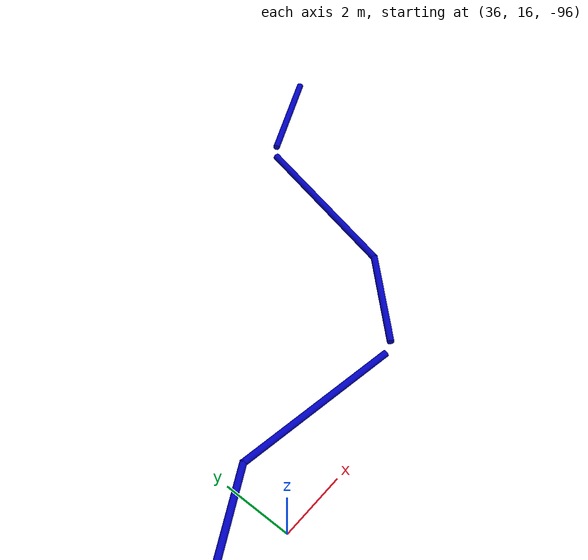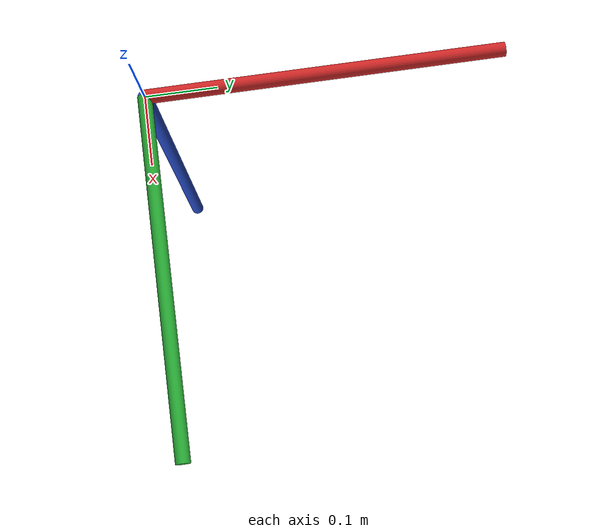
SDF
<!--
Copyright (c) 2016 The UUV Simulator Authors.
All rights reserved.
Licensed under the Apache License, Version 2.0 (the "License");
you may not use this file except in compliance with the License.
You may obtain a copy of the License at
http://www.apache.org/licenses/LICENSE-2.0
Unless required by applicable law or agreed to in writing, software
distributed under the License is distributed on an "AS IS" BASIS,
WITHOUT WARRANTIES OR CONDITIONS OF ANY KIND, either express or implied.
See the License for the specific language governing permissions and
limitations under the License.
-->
<sdf version="1.4">
 <world name="default">
  <physics name="default_physics" default="true" type="ode">
   <max_step_size>0.002</max_step_size>
   <real_time_factor>1</real_time_factor>
   <real_time_update_rate>500</real_time_update_rate>
  </physics>
  <scene>
   <ambient>0.01 0.01 0.01 1.0</ambient>
   <sky><clouds><speed>12</speed></clouds></sky>
   <fog>
    <color>0.1 0.2 0.3 1.0</color>
    <type>linear</type>
    <density>0.1</density>
    <start>10</start>
    <end>40</end>
   </fog>
   <shadows>1</shadows>
  </scene>
  <spherical_coordinates>
   <latitude_deg>56.71897669633431</latitude_deg>
   <longitude_deg>3.515625</longitude_deg>
  </spherical_coordinates>
  <light type="directional" name="sun1">
   <pose>50 0 150 0 0 0</pose>
   <diffuse>1 1 1 1</diffuse>
   <specular>.1 .1 .1 1</specular>
   <direction>0.3 0.3 -1</direction>
   <cast_shadows>false</cast_shadows>
  </light>
  <light type="directional" name="sun_diffuse">
   <pose>-50 0 -150 0 0 0</pose>
   <diffuse>0.6 0.6 0.6 1</diffuse>
   <specular>0 0 0 1</specular>
   <direction>-0.3 -0.3 -1</direction>
   <cast_shadows>false</cast_shadows>
  </light>
  <include><uri>model://ned_frame</uri></include>
  <include>
   <uri>model://pipe_5</uri>
   <name>pipe_3</name>
   <pose>44.3793 21.6634 -94.955 1.57079 -0.0 -0.2607</pose>
  </include>
  <include>
   <uri>model://pipe_5</uri>
   <name>pipe_4</name>
   <pose>38.8212 17.3870 -94.955 1.57079 -0.0 -1.7185</pose>
  </include>
  <include>
   <uri>model://pipe_3</uri>
   <name>pipe_5</name>
   <pose>46.6765 24.9774 -94.955 1.5708 0.0 2.014134</pose>
  </include>
  <include>
   <uri>model://pipe_3</uri>
   <name>pipe_6</name>
   <pose>42.7156 18.2168 -94.955 -1.5708 0.0 2.3712</pose>
  </include>
  <include>
   <uri>model://pipe_3</uri>
   <name>pipe_7</name>
   <pose>35.0878 17.0589 -94.955 1.5708 -0.0 -1.0782</pose>
  </include>
  <plugin name="underwater_current_plugin" filename="libuuv_underwater_current_ros_plugin.so">
   <namespace>hydrodynamics</namespace>
   <constant_current>
    <topic>current_velocity</topic>
    <velocity><mean>0</mean><min>0</min><max>5</max><mu>0.0</mu><noiseAmp>0.0</noiseAmp></velocity>
    <horizontal_angle>
     <mean>0</mean>
     <min>-3.141592653589793238</min>
     <max>3.141592653589793238</max>
     <mu>0.0</mu>
     <noiseAmp>0.0</noiseAmp>
    </horizontal_angle>
    <vertical_angle>
     <mean>0</mean>
     <min>-3.141592653589793238</min>
     <max>3.141592653589793238</max>
     <mu>0.0</mu>
     <noiseAmp>0.0</noiseAmp>
    </vertical_angle>
   </constant_current>
  </plugin>
  <plugin name="sc_interface" filename="libuuv_sc_ros_interface_plugin.so"/>
 </world>
</sdf>

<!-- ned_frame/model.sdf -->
<sdf version='1.5'>
    <model name="world_ned">

      <pose>0 0 0 0 0 0</pose>
      <static>true</static>

      <link name="world_ned">
        <gravity>0</gravity>
        <pose>0 0 0 3.14159265359 0 1.5707963267948966</pose>

        <visual name="N_visual">
          <pose>0.25 0 0 1.5707963267948966 0 1.5707963267948966</pose>
          <geometry>
            <cylinder>
              <radius>0.01</radius>
              <length>0.5</length>
            </cylinder>
          </geometry>
          <material>
            <script>
              <uri>file://media/materials/scripts/gazebo.material</uri>
              <name>Gazebo/Red</name>
            </script>
          </material>
        </visual>

        <visual name="E_visual">
          <pose>0 0.25 0 1.5707963267948966 0 0</pose>
          <geometry>
            <cylinder>
              <radius>0.01</radius>
              <length>0.5</length>
            </cylinder>
          </geometry>
          <material>
            <script>
              <uri>file://media/materials/scripts/gazebo.material</uri>
              <name>Gazebo/Green</name>
            </script>
          </material>
        </visual>

        <visual name="D_visual">
          <pose>0 0 0.25 0 0 0</pose>
          <geometry>
            <cylinder>
              <radius>0.01</radius>
              <length>0.5</length>
            </cylinder>
          </geometry>
          <material>
            <script>
              <uri>file://media/materials/scripts/gazebo.material</uri>
              <name>Gazebo/Blue</name>
            </script>
          </material>
        </visual>
      </link>
    </model>
</sdf>

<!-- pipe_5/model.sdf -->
<sdf version='1.7'>
    <model name='pipe_5'>
      <link name='link'>
        <inertial>
          <mass>6126.11</mass>
          <inertia>
            <ixx>893.39</ixx>
            <ixy>0</ixy>
            <ixz>0</ixz>
            <iyy>893.39</iyy>
            <iyz>0</iyz>
            <izz>765.763</izz>
          </inertia>
          <pose>0 0 0 0 -0 0</pose>
        </inertial>
        <self_collide>0</self_collide>
        <enable_wind>0</enable_wind>
        <kinematic>0</kinematic>
        <pose>0 0 -0 0 -0 0</pose>
        <gravity>1</gravity>
        <visual name='visual'>
          <geometry>
            <cylinder>
              <radius>0.1</radius>
              <length>5</length>
            </cylinder>
          </geometry>
          <material>
            <script>
              <name>Gazebo/Grey</name>
              <uri>file://media/materials/scripts/gazebo.material</uri>
            </script>
            <shader type='pixel'>
              <normal_map>__default__</normal_map>
            </shader>
            <ambient>0.0 0.0 0.3 1</ambient>
            <diffuse>0.0 0.0 0.75 1</diffuse>
            <specular>0.01 0.01 0.01 1</specular>
            <emissive>0 0 0 1</emissive>
          </material>
          <pose>0 0 0 0 -0 0</pose>
          <transparency>0</transparency>
          <cast_shadows>1</cast_shadows>
        </visual>
        <collision name='collision'>
          <laser_retro>0</laser_retro>
          <max_contacts>10</max_contacts>
          <pose>0 0 0 0 -0 0</pose>
          <geometry>
            <cylinder>
              <radius>0.1</radius>
              <length>5</length>
            </cylinder>
          </geometry>
          <surface>
            <friction>
              <ode>
                <mu>1</mu>
                <mu2>1</mu2>
                <fdir1>0 0 0</fdir1>
                <slip1>0</slip1>
                <slip2>0</slip2>
              </ode>
              <torsional>
                <coefficient>1</coefficient>
                <patch_radius>0</patch_radius>
                <surface_radius>0</surface_radius>
                <use_patch_radius>1</use_patch_radius>
                <ode>
                  <slip>0</slip>
                </ode>
              </torsional>
            </friction>
            <bounce>
              <restitution_coefficient>0</restitution_coefficient>
              <threshold>1e+06</threshold>
            </bounce>
            <contact>
              <collide_without_contact>0</collide_without_contact>
              <collide_without_contact_bitmask>1</collide_without_contact_bitmask>
              <collide_bitmask>1</collide_bitmask>
              <ode>
                <soft_cfm>0</soft_cfm>
                <soft_erp>0.2</soft_erp>
                <kp>1e+13</kp>
                <kd>1</kd>
                <max_vel>0.01</max_vel>
                <min_depth>0</min_depth>
              </ode>
              <bullet>
                <split_impulse>1</split_impulse>
                <split_impulse_penetration_threshold>-0.01</split_impulse_penetration_threshold>
                <soft_cfm>0</soft_cfm>
                <soft_erp>0.2</soft_erp>
                <kp>1e+13</kp>
                <kd>1</kd>
              </bullet>
            </contact>
          </surface>
        </collision>
      </link>
      <static>1</static>
      <allow_auto_disable>1</allow_auto_disable>
      <pose>0.277397 -0.141878 0 0 -0 0</pose>
    </model>
</sdf>

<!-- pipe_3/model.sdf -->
<sdf version='1.7'>
    <model name='pipe_3'>
      <link name='link'>
        <inertial>
          <mass>6126.11</mass>
          <inertia>
            <ixx>893.39</ixx>
            <ixy>0</ixy>
            <ixz>0</ixz>
            <iyy>893.39</iyy>
            <iyz>0</iyz>
            <izz>765.763</izz>
          </inertia>
          <pose>0 0 0 0 -0 0</pose>
        </inertial>
        <self_collide>0</self_collide>
        <enable_wind>0</enable_wind>
        <kinematic>0</kinematic>
        <pose>0 0 -0 0 -0 0</pose>
        <gravity>1</gravity>
        <visual name='visual'>
          <geometry>
            <cylinder>
              <radius>0.1</radius>
              <length>3</length>
            </cylinder>
          </geometry>
          <material>
            <script>
              <name>Gazebo/Grey</name>
              <uri>file://media/materials/scripts/gazebo.material</uri>
            </script>
            <shader type='pixel'>
              <normal_map>__default__</normal_map>
            </shader>
            <ambient>0.0 0.0 0.3 1</ambient>
            <diffuse>0.0 0.0 0.75 1</diffuse>
            <specular>0.01 0.01 0.01 1</specular>
            <emissive>0 0 0 1</emissive>
          </material>
          <pose>0 0 0 0 -0 0</pose>
          <transparency>0</transparency>
          <cast_shadows>1</cast_shadows>
        </visual>
        <collision name='collision'>
          <laser_retro>0</laser_retro>
          <max_contacts>10</max_contacts>
          <pose>0 0 0 0 -0 0</pose>
          <geometry>
            <cylinder>
              <radius>0.1</radius>
              <length>3</length>
            </cylinder>
          </geometry>
          <surface>
            <friction>
              <ode>
                <mu>1</mu>
                <mu2>1</mu2>
                <fdir1>0 0 0</fdir1>
                <slip1>0</slip1>
                <slip2>0</slip2>
              </ode>
              <torsional>
                <coefficient>1</coefficient>
                <patch_radius>0</patch_radius>
                <surface_radius>0</surface_radius>
                <use_patch_radius>1</use_patch_radius>
                <ode>
                  <slip>0</slip>
                </ode>
              </torsional>
            </friction>
            <bounce>
              <restitution_coefficient>0</restitution_coefficient>
              <threshold>1e+06</threshold>
            </bounce>
            <contact>
              <collide_without_contact>0</collide_without_contact>
              <collide_without_contact_bitmask>1</collide_without_contact_bitmask>
              <collide_bitmask>1</collide_bitmask>
              <ode>
                <soft_cfm>0</soft_cfm>
                <soft_erp>0.2</soft_erp>
                <kp>1e+13</kp>
                <kd>1</kd>
                <max_vel>0.01</max_vel>
                <min_depth>0</min_depth>
              </ode>
              <bullet>
                <split_impulse>1</split_impulse>
                <split_impulse_penetration_threshold>-0.01</split_impulse_penetration_threshold>
                <soft_cfm>0</soft_cfm>
                <soft_erp>0.2</soft_erp>
                <kp>1e+13</kp>
                <kd>1</kd>
              </bullet>
            </contact>
          </surface>
        </collision>
      </link>
      <static>1</static>
      <allow_auto_disable>1</allow_auto_disable>
      <pose>0.277397 -0.141878 0 0 -0 0</pose>
    </model>
</sdf>
